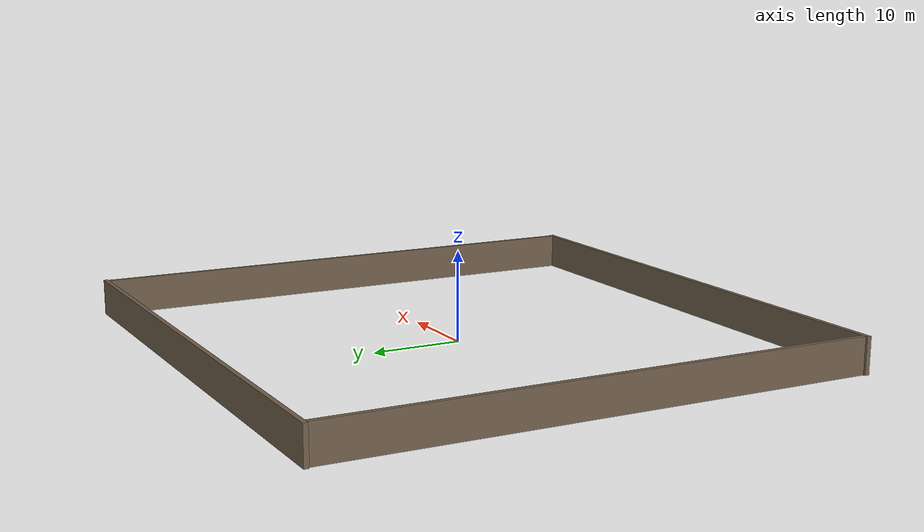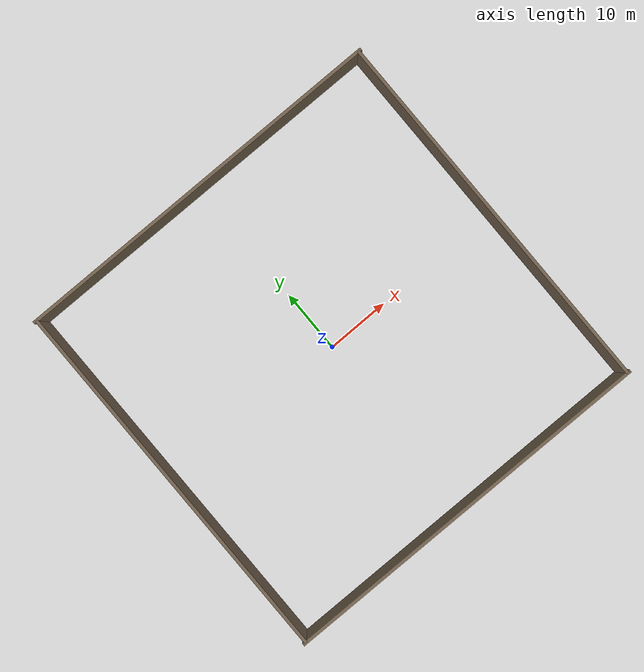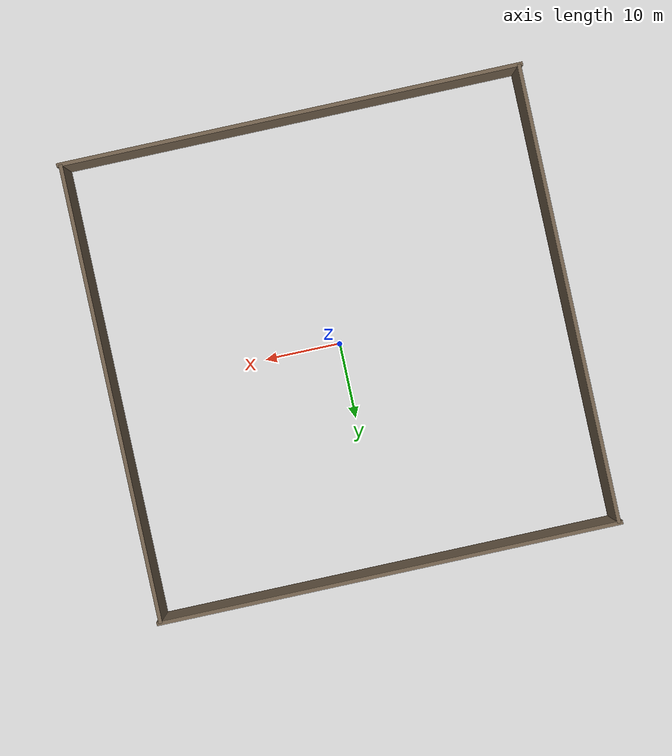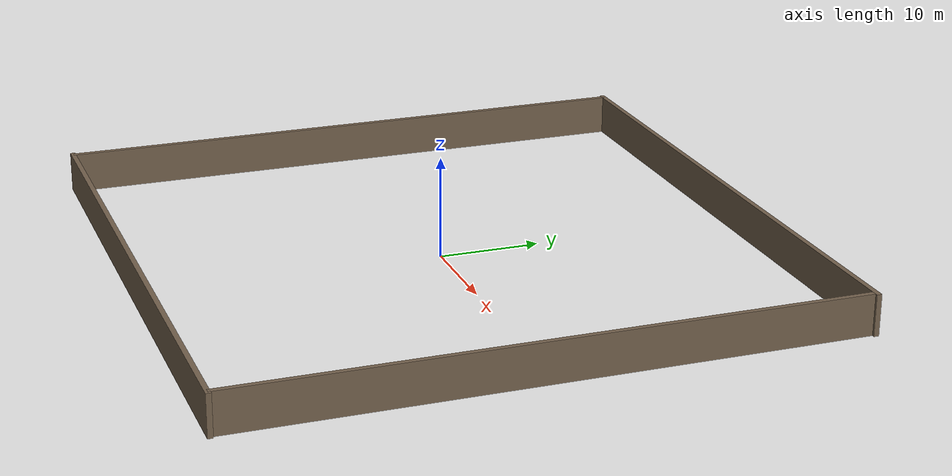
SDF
<?xml version="1.0"?>
<sdf version="1.7">
  <!-- Closed perimeter for 60 x 60 m heightmaps (origin-centred, X ±30, Y ±30).
       0.5 m thick boxes so gpu_lidar / SLAM see the boundary. -->
  <model name="map_perimeter_60">
    <static>true</static>

    <!-- West wall: x = -30, spans full Y (60 m) -->
    <link name="west">
      <collision name="collision">
        <pose>0 0 2 0 0 0</pose>
        <geometry>
          <box>
            <size>0.5 60 4</size>
          </box>
        </geometry>
      </collision>
      <visual name="visual">
        <pose>0 0 2 0 0 0</pose>
        <cast_shadows>false</cast_shadows>
        <geometry>
          <box>
            <size>0.5 60 4</size>
          </box>
        </geometry>
        <material>
          <ambient>0.35 0.30 0.25 1</ambient>
          <diffuse>0.45 0.38 0.30 1</diffuse>
        </material>
      </visual>
      <pose>-30 0 0 0 0 0</pose>
    </link>

    <!-- East wall: x = +30, spans full Y -->
    <link name="east">
      <collision name="collision">
        <pose>0 0 2 0 0 0</pose>
        <geometry>
          <box>
            <size>0.5 60 4</size>
          </box>
        </geometry>
      </collision>
      <visual name="visual">
        <pose>0 0 2 0 0 0</pose>
        <cast_shadows>false</cast_shadows>
        <geometry>
          <box>
            <size>0.5 60 4</size>
          </box>
        </geometry>
        <material>
          <ambient>0.35 0.30 0.25 1</ambient>
          <diffuse>0.45 0.38 0.30 1</diffuse>
        </material>
      </visual>
      <pose>30 0 0 0 0 0</pose>
    </link>

    <!-- South wall: y = -30; 61 m long so corners seal against east/west -->
    <link name="south">
      <collision name="collision">
        <pose>0 0 2 0 0 0</pose>
        <geometry>
          <box>
            <size>61 0.5 4</size>
          </box>
        </geometry>
      </collision>
      <visual name="visual">
        <pose>0 0 2 0 0 0</pose>
        <cast_shadows>false</cast_shadows>
        <geometry>
          <box>
            <size>61 0.5 4</size>
          </box>
        </geometry>
        <material>
          <ambient>0.35 0.30 0.25 1</ambient>
          <diffuse>0.45 0.38 0.30 1</diffuse>
        </material>
      </visual>
      <pose>0 -30 0 0 0 0</pose>
    </link>

    <!-- North wall: y = +30 -->
    <link name="north">
      <collision name="collision">
        <pose>0 0 2 0 0 0</pose>
        <geometry>
          <box>
            <size>61 0.5 4</size>
          </box>
        </geometry>
      </collision>
      <visual name="visual">
        <pose>0 0 2 0 0 0</pose>
        <cast_shadows>false</cast_shadows>
        <geometry>
          <box>
            <size>61 0.5 4</size>
          </box>
        </geometry>
        <material>
          <ambient>0.35 0.30 0.25 1</ambient>
          <diffuse>0.45 0.38 0.30 1</diffuse>
        </material>
      </visual>
      <pose>0 30 0 0 0 0</pose>
    </link>
  </model>
</sdf>
